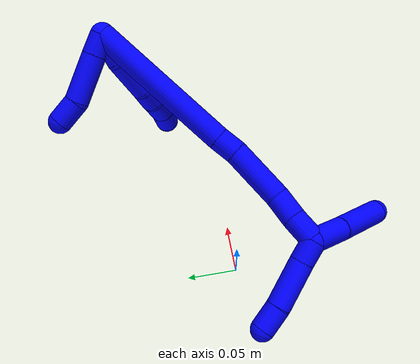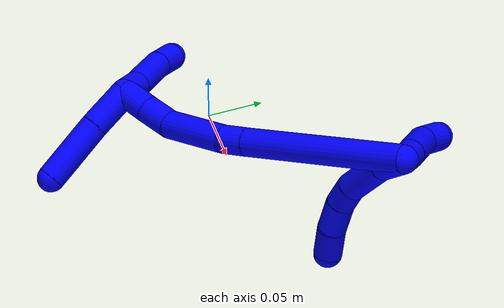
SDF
<sdf version="1.7">
 <world name="default">
  <model name="1">
   <static>0</static>
   <link name="1">
    <collision name="collision-cylinder-e_1_2_8">
     <pose>-0.000245 -0.013039 -0.009039 2.17699 -0.015438 -0.029486</pose>
     <geometry><cylinder><radius>0.0125</radius><length>0.031735</length></cylinder></geometry>
     <surface>
      <friction><ode><mu>1.16</mu><mu2>1.16</mu2><slip1>0</slip1><slip2>0</slip2></ode></friction>
      <contact><ode><kp>1e+06</kp><kd>1</kd><max_vel>0</max_vel><min_depth>0.001</min_depth></ode></contact>
     </surface>
    </collision>
    <visual name="visual-cylinder-e_1_2_8">
     <pose>-0.000245 -0.013039 -0.009039 2.17699 -0.015438 -0.029486</pose>
     <geometry><cylinder><radius>0.0125</radius><length>0.031735</length></cylinder></geometry>
     <material><ambient>0 0 1 1</ambient></material>
    </visual>
    <collision name="collision-cylinder-e_2_8_9">
     <pose>0.003306 -0.04509 -0.026472 1.98654 0.180654 0.276217</pose>
     <geometry><cylinder><radius>0.0125</radius><length>0.042253</length></cylinder></geometry>
     <surface>
      <friction><ode><mu>1.16</mu><mu2>1.16</mu2><slip1>0</slip1><slip2>0</slip2></ode></friction>
      <contact><ode><kp>1e+06</kp><kd>1</kd><max_vel>0</max_vel><min_depth>0.001</min_depth></ode></contact>
     </surface>
    </collision>
    <visual name="visual-cylinder-e_2_8_9">
     <pose>0.003306 -0.04509 -0.026472 1.98654 0.180654 0.276217</pose>
     <geometry><cylinder><radius>0.0125</radius><length>0.042253</length></cylinder></geometry>
     <material><ambient>0 0 1 1</ambient></material>
    </visual>
    <collision name="collision-cylinder-e_3_9_10">
     <pose>0.011807 -0.073025 -0.038588 1.96599 0.452942 0.665835</pose>
     <geometry><cylinder><radius>0.0125</radius><length>0.021506</length></cylinder></geometry>
     <surface>
      <friction><ode><mu>1.16</mu><mu2>1.16</mu2><slip1>0</slip1><slip2>0</slip2></ode></friction>
      <contact><ode><kp>1e+06</kp><kd>1</kd><max_vel>0</max_vel><min_depth>0.001</min_depth></ode></contact>
     </surface>
    </collision>
    <visual name="visual-cylinder-e_3_9_10">
     <pose>0.011807 -0.073025 -0.038588 1.96599 0.452942 0.665835</pose>
     <geometry><cylinder><radius>0.0125</radius><length>0.021506</length></cylinder></geometry>
     <material><ambient>0 0 1 1</ambient></material>
    </visual>
    <collision name="collision-cylinder-e_4_10_11">
     <pose>0.025335 -0.092169 -0.045385 1.86299 0.690728 0.901423</pose>
     <geometry><cylinder><radius>0.0125</radius><length>0.027694</length></cylinder></geometry>
     <surface>
      <friction><ode><mu>1.16</mu><mu2>1.16</mu2><slip1>0</slip1><slip2>0</slip2></ode></friction>
      <contact><ode><kp>1e+06</kp><kd>1</kd><max_vel>0</max_vel><min_depth>0.001</min_depth></ode></contact>
     </surface>
    </collision>
    <visual name="visual-cylinder-e_4_10_11">
     <pose>0.025335 -0.092169 -0.045385 1.86299 0.690728 0.901423</pose>
     <geometry><cylinder><radius>0.0125</radius><length>0.027694</length></cylinder></geometry>
     <material><ambient>0 0 1 1</ambient></material>
    </visual>
    <collision name="collision-cylinder-e_5_11_6">
     <pose>0.043695 -0.110824 -0.052655 2.03248 0.791615 1.18699</pose>
     <geometry><cylinder><radius>0.0125</radius><length>0.026813</length></cylinder></geometry>
     <surface>
      <friction><ode><mu>1.16</mu><mu2>1.16</mu2><slip1>0</slip1><slip2>0</slip2></ode></friction>
      <contact><ode><kp>1e+06</kp><kd>1</kd><max_vel>0</max_vel><min_depth>0.001</min_depth></ode></contact>
     </surface>
    </collision>
    <visual name="visual-cylinder-e_5_11_6">
     <pose>0.043695 -0.110824 -0.052655 2.03248 0.791615 1.18699</pose>
     <geometry><cylinder><radius>0.0125</radius><length>0.026813</length></cylinder></geometry>
     <material><ambient>0 0 1 1</ambient></material>
    </visual>
    <collision name="collision-cylinder-e_1_2_12">
     <pose>0.000828 -0.000186 -0.011252 3.12508 0.073416 2.69941</pose>
     <geometry><cylinder><radius>0.0125</radius><length>0.022568</length></cylinder></geometry>
     <surface>
      <friction><ode><mu>1.16</mu><mu2>1.16</mu2><slip1>0</slip1><slip2>0</slip2></ode></friction>
      <contact><ode><kp>1e+06</kp><kd>1</kd><max_vel>0</max_vel><min_depth>0.001</min_depth></ode></contact>
     </surface>
    </collision>
    <visual name="visual-cylinder-e_1_2_12">
     <pose>0.000828 -0.000186 -0.011252 3.12508 0.073416 2.69941</pose>
     <geometry><cylinder><radius>0.0125</radius><length>0.022568</length></cylinder></geometry>
     <material><ambient>0 0 1 1</ambient></material>
    </visual>
    <collision name="collision-cylinder-e_2_12_13">
     <pose>0.002607 -0.001126 -0.047807 3.11179 0.03757 1.80035</pose>
     <geometry><cylinder><radius>0.0125</radius><length>0.050663</length></cylinder></geometry>
     <surface>
      <friction><ode><mu>1.16</mu><mu2>1.16</mu2><slip1>0</slip1><slip2>0</slip2></ode></friction>
      <contact><ode><kp>1e+06</kp><kd>1</kd><max_vel>0</max_vel><min_depth>0.001</min_depth></ode></contact>
     </surface>
    </collision>
    <visual name="visual-cylinder-e_2_12_13">
     <pose>0.002607 -0.001126 -0.047807 3.11179 0.03757 1.80035</pose>
     <geometry><cylinder><radius>0.0125</radius><length>0.050663</length></cylinder></geometry>
     <material><ambient>0 0 1 1</ambient></material>
    </visual>
    <collision name="collision-cylinder-e_3_13_5">
     <pose>0.006606 0.001388 -0.085725 -2.88811 0.229703 -1.47147</pose>
     <geometry><cylinder><radius>0.0125</radius><length>0.026769</length></cylinder></geometry>
     <surface>
      <friction><ode><mu>1.16</mu><mu2>1.16</mu2><slip1>0</slip1><slip2>0</slip2></ode></friction>
      <contact><ode><kp>1e+06</kp><kd>1</kd><max_vel>0</max_vel><min_depth>0.001</min_depth></ode></contact>
     </surface>
    </collision>
    <visual name="visual-cylinder-e_3_13_5">
     <pose>0.006606 0.001388 -0.085725 -2.88811 0.229703 -1.47147</pose>
     <geometry><cylinder><radius>0.0125</radius><length>0.026769</length></cylinder></geometry>
     <material><ambient>0 0 1 1</ambient></material>
    </visual>
    <collision name="collision-cylinder-e_1_2_14">
     <pose>-0.032199 -0.066756 -0.026095 1.94343 -0.422215 -0.608248</pose>
     <geometry><cylinder><radius>0.0125</radius><length>0.157151</length></cylinder></geometry>
     <surface>
      <friction><ode><mu>1.16</mu><mu2>1.16</mu2><slip1>0</slip1><slip2>0</slip2></ode></friction>
      <contact><ode><kp>1e+06</kp><kd>1</kd><max_vel>0</max_vel><min_depth>0.001</min_depth></ode></contact>
     </surface>
    </collision>
    <visual name="visual-cylinder-e_1_2_14">
     <pose>-0.032199 -0.066756 -0.026095 1.94343 -0.422215 -0.608248</pose>
     <geometry><cylinder><radius>0.0125</radius><length>0.157151</length></cylinder></geometry>
     <material><ambient>0 0 1 1</ambient></material>
    </visual>
    <collision name="collision-cylinder-e_2_14_15">
     <pose>-0.069608 -0.143312 -0.05532 1.88002 -0.468834 -0.63206</pose>
     <geometry><cylinder><radius>0.0125</radius><length>0.023064</length></cylinder></geometry>
     <surface>
      <friction><ode><mu>1.16</mu><mu2>1.16</mu2><slip1>0</slip1><slip2>0</slip2></ode></friction>
      <contact><ode><kp>1e+06</kp><kd>1</kd><max_vel>0</max_vel><min_depth>0.001</min_depth></ode></contact>
     </surface>
    </collision>
    <visual name="visual-cylinder-e_2_14_15">
     <pose>-0.069608 -0.143312 -0.05532 1.88002 -0.468834 -0.63206</pose>
     <geometry><cylinder><radius>0.0125</radius><length>0.023064</length></cylinder></geometry>
     <material><ambient>0 0 1 1</ambient></material>
    </visual>
    <collision name="collision-cylinder-e_3_15_16">
     <pose>-0.089667 -0.176668 -0.071044 2.06174 -0.507355 -0.816557</pose>
     <geometry><cylinder><radius>0.0125</radius><length>0.061122</length></cylinder></geometry>
     <surface>
      <friction><ode><mu>1.16</mu><mu2>1.16</mu2><slip1>0</slip1><slip2>0</slip2></ode></friction>
      <contact><ode><kp>1e+06</kp><kd>1</kd><max_vel>0</max_vel><min_depth>0.001</min_depth></ode></contact>
     </surface>
    </collision>
    <visual name="visual-cylinder-e_3_15_16">
     <pose>-0.089667 -0.176668 -0.071044 2.06174 -0.507355 -0.816557</pose>
     <geometry><cylinder><radius>0.0125</radius><length>0.061122</length></cylinder></geometry>
     <material><ambient>0 0 1 1</ambient></material>
    </visual>
    <collision name="collision-cylinder-e_4_16_17">
     <pose>-0.1141 -0.208691 -0.090467 2.24964 -0.72223 -1.33716</pose>
     <geometry><cylinder><radius>0.0125</radius><length>0.028995</length></cylinder></geometry>
     <surface>
      <friction><ode><mu>1.16</mu><mu2>1.16</mu2><slip1>0</slip1><slip2>0</slip2></ode></friction>
      <contact><ode><kp>1e+06</kp><kd>1</kd><max_vel>0</max_vel><min_depth>0.001</min_depth></ode></contact>
     </surface>
    </collision>
    <visual name="visual-cylinder-e_4_16_17">
     <pose>-0.1141 -0.208691 -0.090467 2.24964 -0.72223 -1.33716</pose>
     <geometry><cylinder><radius>0.0125</radius><length>0.028995</length></cylinder></geometry>
     <material><ambient>0 0 1 1</ambient></material>
    </visual>
    <collision name="collision-cylinder-e_5_17_1">
     <pose>-0.134667 -0.225332 -0.103007 2.18045 -0.833704 -1.40825</pose>
     <geometry><cylinder><radius>0.0125</radius><length>0.029668</length></cylinder></geometry>
     <surface>
      <friction><ode><mu>1.16</mu><mu2>1.16</mu2><slip1>0</slip1><slip2>0</slip2></ode></friction>
      <contact><ode><kp>1e+06</kp><kd>1</kd><max_vel>0</max_vel><min_depth>0.001</min_depth></ode></contact>
     </surface>
    </collision>
    <visual name="visual-cylinder-e_5_17_1">
     <pose>-0.134667 -0.225332 -0.103007 2.18045 -0.833704 -1.40825</pose>
     <geometry><cylinder><radius>0.0125</radius><length>0.029668</length></cylinder></geometry>
     <material><ambient>0 0 1 1</ambient></material>
    </visual>
    <collision name="collision-cylinder-e_1_1_18">
     <pose>-0.145367 -0.231892 -0.120761 -3.00843 0.023319 -0.346235</pose>
     <geometry><cylinder><radius>0.0125</radius><length>0.024312</length></cylinder></geometry>
     <surface>
      <friction><ode><mu>1.16</mu><mu2>1.16</mu2><slip1>0</slip1><slip2>0</slip2></ode></friction>
      <contact><ode><kp>1e+06</kp><kd>1</kd><max_vel>0</max_vel><min_depth>0.001</min_depth></ode></contact>
     </surface>
    </collision>
    <visual name="visual-cylinder-e_1_1_18">
     <pose>-0.145367 -0.231892 -0.120761 -3.00843 0.023319 -0.346235</pose>
     <geometry><cylinder><radius>0.0125</radius><length>0.024312</length></cylinder></geometry>
     <material><ambient>0 0 1 1</ambient></material>
    </visual>
    <collision name="collision-cylinder-e_2_18_19">
     <pose>-0.146971 -0.226508 -0.157144 -2.98788 -0.076467 0.922064</pose>
     <geometry><cylinder><radius>0.0125</radius><length>0.049402</length></cylinder></geometry>
     <surface>
      <friction><ode><mu>1.16</mu><mu2>1.16</mu2><slip1>0</slip1><slip2>0</slip2></ode></friction>
      <contact><ode><kp>1e+06</kp><kd>1</kd><max_vel>0</max_vel><min_depth>0.001</min_depth></ode></contact>
     </surface>
    </collision>
    <visual name="visual-cylinder-e_2_18_19">
     <pose>-0.146971 -0.226508 -0.157144 -2.98788 -0.076467 0.922064</pose>
     <geometry><cylinder><radius>0.0125</radius><length>0.049402</length></cylinder></geometry>
     <material><ambient>0 0 1 1</ambient></material>
    </visual>
    <collision name="collision-cylinder-e_3_19_4">
     <pose>-0.14838 -0.219767 -0.194277 -2.91348 0.036373 -0.314924</pose>
     <geometry><cylinder><radius>0.0125</radius><length>0.026286</length></cylinder></geometry>
     <surface>
      <friction><ode><mu>1.16</mu><mu2>1.16</mu2><slip1>0</slip1><slip2>0</slip2></ode></friction>
      <contact><ode><kp>1e+06</kp><kd>1</kd><max_vel>0</max_vel><min_depth>0.001</min_depth></ode></contact>
     </surface>
    </collision>
    <visual name="visual-cylinder-e_3_19_4">
     <pose>-0.14838 -0.219767 -0.194277 -2.91348 0.036373 -0.314924</pose>
     <geometry><cylinder><radius>0.0125</radius><length>0.026286</length></cylinder></geometry>
     <material><ambient>0 0 1 1</ambient></material>
    </visual>
    <collision name="collision-cylinder-e_1_1_20">
     <pose>-0.139551 -0.249845 -0.099221 1.04437 0.312208 0.180647</pose>
     <geometry><cylinder><radius>0.0125</radius><length>0.039716</length></cylinder></geometry>
     <surface>
      <friction><ode><mu>1.16</mu><mu2>1.16</mu2><slip1>0</slip1><slip2>0</slip2></ode></friction>
      <contact><ode><kp>1e+06</kp><kd>1</kd><max_vel>0</max_vel><min_depth>0.001</min_depth></ode></contact>
     </surface>
    </collision>
    <visual name="visual-cylinder-e_1_1_20">
     <pose>-0.139551 -0.249845 -0.099221 1.04437 0.312208 0.180647</pose>
     <geometry><cylinder><radius>0.0125</radius><length>0.039716</length></cylinder></geometry>
     <material><ambient>0 0 1 1</ambient></material>
    </visual>
    <collision name="collision-cylinder-e_2_20_3">
     <pose>-0.122683 -0.290438 -0.075429 1.03816 0.365314 0.210292</pose>
     <geometry><cylinder><radius>0.0125</radius><length>0.060284</length></cylinder></geometry>
     <surface>
      <friction><ode><mu>1.16</mu><mu2>1.16</mu2><slip1>0</slip1><slip2>0</slip2></ode></friction>
      <contact><ode><kp>1e+06</kp><kd>1</kd><max_vel>0</max_vel><min_depth>0.001</min_depth></ode></contact>
     </surface>
    </collision>
    <visual name="visual-cylinder-e_2_20_3">
     <pose>-0.122683 -0.290438 -0.075429 1.03816 0.365314 0.210292</pose>
     <geometry><cylinder><radius>0.0125</radius><length>0.060284</length></cylinder></geometry>
     <material><ambient>0 0 1 1</ambient></material>
    </visual>
    <collision name="collision-sphere-3">
     <pose>-0.111915 -0.314691 -0.061133 0 -0 0</pose>
     <geometry><sphere><radius>0.0125</radius></sphere></geometry>
     <surface>
      <friction><ode><mu>1.16</mu><mu2>1.16</mu2><slip1>0</slip1><slip2>0</slip2></ode></friction>
      <contact><ode><kp>1e+06</kp><kd>1</kd><max_vel>0</max_vel><min_depth>0.001</min_depth></ode></contact>
     </surface>
    </collision>
    <visual name="visual-sphere-3">
     <pose>-0.111915 -0.314691 -0.061133 0 -0 0</pose>
     <geometry><sphere><radius>0.0125</radius></sphere></geometry>
     <material><ambient>0 0 1 1</ambient></material>
    </visual>
    <collision name="collision-sphere-20">
     <pose>-0.133452 -0.266185 -0.089725 0 -0 0</pose>
     <geometry><sphere><radius>0.0125</radius></sphere></geometry>
     <surface>
      <friction><ode><mu>1.16</mu><mu2>1.16</mu2><slip1>0</slip1><slip2>0</slip2></ode></friction>
      <contact><ode><kp>1e+06</kp><kd>1</kd><max_vel>0</max_vel><min_depth>0.001</min_depth></ode></contact>
     </surface>
    </collision>
    <visual name="visual-sphere-20">
     <pose>-0.133452 -0.266185 -0.089725 0 -0 0</pose>
     <geometry><sphere><radius>0.0125</radius></sphere></geometry>
     <material><ambient>0 0 1 1</ambient></material>
    </visual>
    <collision name="collision-sphere-4">
     <pose>-0.147902 -0.216797 -0.207071 0 -0 0</pose>
     <geometry><sphere><radius>0.0125</radius></sphere></geometry>
     <surface>
      <friction><ode><mu>1.16</mu><mu2>1.16</mu2><slip1>0</slip1><slip2>0</slip2></ode></friction>
      <contact><ode><kp>1e+06</kp><kd>1</kd><max_vel>0</max_vel><min_depth>0.001</min_depth></ode></contact>
     </surface>
    </collision>
    <visual name="visual-sphere-4">
     <pose>-0.147902 -0.216797 -0.207071 0 -0 0</pose>
     <geometry><sphere><radius>0.0125</radius></sphere></geometry>
     <material><ambient>0 0 1 1</ambient></material>
    </visual>
    <collision name="collision-sphere-6">
     <pose>0.053234 -0.119258 -0.056852 0 -0 0</pose>
     <geometry><sphere><radius>0.0125</radius></sphere></geometry>
     <surface>
      <friction><ode><mu>1.16</mu><mu2>1.16</mu2><slip1>0</slip1><slip2>0</slip2></ode></friction>
      <contact><ode><kp>1e+06</kp><kd>1</kd><max_vel>0</max_vel><min_depth>0.001</min_depth></ode></contact>
     </surface>
    </collision>
    <visual name="visual-sphere-6">
     <pose>0.053234 -0.119258 -0.056852 0 -0 0</pose>
     <geometry><sphere><radius>0.0125</radius></sphere></geometry>
     <material><ambient>0 0 1 1</ambient></material>
    </visual>
    <collision name="collision-sphere-11">
     <pose>0.034157 -0.10239 -0.048459 0 -0 0</pose>
     <geometry><sphere><radius>0.0125</radius></sphere></geometry>
     <surface>
      <friction><ode><mu>1.16</mu><mu2>1.16</mu2><slip1>0</slip1><slip2>0</slip2></ode></friction>
      <contact><ode><kp>1e+06</kp><kd>1</kd><max_vel>0</max_vel><min_depth>0.001</min_depth></ode></contact>
     </surface>
    </collision>
    <visual name="visual-sphere-11">
     <pose>0.034157 -0.10239 -0.048459 0 -0 0</pose>
     <geometry><sphere><radius>0.0125</radius></sphere></geometry>
     <material><ambient>0 0 1 1</ambient></material>
    </visual>
    <collision name="collision-sphere-10">
     <pose>0.016513 -0.081949 -0.04231 0 -0 0</pose>
     <geometry><sphere><radius>0.0125</radius></sphere></geometry>
     <surface>
      <friction><ode><mu>1.16</mu><mu2>1.16</mu2><slip1>0</slip1><slip2>0</slip2></ode></friction>
      <contact><ode><kp>1e+06</kp><kd>1</kd><max_vel>0</max_vel><min_depth>0.001</min_depth></ode></contact>
     </surface>
    </collision>
    <visual name="visual-sphere-10">
     <pose>0.016513 -0.081949 -0.04231 0 -0 0</pose>
     <geometry><sphere><radius>0.0125</radius></sphere></geometry>
     <material><ambient>0 0 1 1</ambient></material>
    </visual>
    <collision name="collision-sphere-9">
     <pose>0.007102 -0.064102 -0.034866 0 -0 0</pose>
     <geometry><sphere><radius>0.0125</radius></sphere></geometry>
     <surface>
      <friction><ode><mu>1.16</mu><mu2>1.16</mu2><slip1>0</slip1><slip2>0</slip2></ode></friction>
      <contact><ode><kp>1e+06</kp><kd>1</kd><max_vel>0</max_vel><min_depth>0.001</min_depth></ode></contact>
     </surface>
    </collision>
    <visual name="visual-sphere-9">
     <pose>0.007102 -0.064102 -0.034866 0 -0 0</pose>
     <geometry><sphere><radius>0.0125</radius></sphere></geometry>
     <material><ambient>0 0 1 1</ambient></material>
    </visual>
    <collision name="collision-sphere-2">
     <geometry><sphere><radius>0.0125</radius></sphere></geometry>
     <surface>
      <friction><ode><mu>1.16</mu><mu2>1.16</mu2><slip1>0</slip1><slip2>0</slip2></ode></friction>
      <contact><ode><kp>1e+06</kp><kd>1</kd><max_vel>0</max_vel><min_depth>0.001</min_depth></ode></contact>
     </surface>
    </collision>
    <visual name="visual-sphere-2">
     <geometry><sphere><radius>0.0125</radius></sphere></geometry>
     <material><ambient>0 0 1 1</ambient></material>
    </visual>
    <collision name="collision-sphere-19">
     <pose>-0.148858 -0.222737 -0.181482 0 -0 0</pose>
     <geometry><sphere><radius>0.0125</radius></sphere></geometry>
     <surface>
      <friction><ode><mu>1.16</mu><mu2>1.16</mu2><slip1>0</slip1><slip2>0</slip2></ode></friction>
      <contact><ode><kp>1e+06</kp><kd>1</kd><max_vel>0</max_vel><min_depth>0.001</min_depth></ode></contact>
     </surface>
    </collision>
    <visual name="visual-sphere-19">
     <pose>-0.148858 -0.222737 -0.181482 0 -0 0</pose>
     <geometry><sphere><radius>0.0125</radius></sphere></geometry>
     <material><ambient>0 0 1 1</ambient></material>
    </visual>
    <collision name="collision-sphere-8">
     <pose>-0.00049 -0.026077 -0.018079 0 -0 0</pose>
     <geometry><sphere><radius>0.0125</radius></sphere></geometry>
     <surface>
      <friction><ode><mu>1.16</mu><mu2>1.16</mu2><slip1>0</slip1><slip2>0</slip2></ode></friction>
      <contact><ode><kp>1e+06</kp><kd>1</kd><max_vel>0</max_vel><min_depth>0.001</min_depth></ode></contact>
     </surface>
    </collision>
    <visual name="visual-sphere-8">
     <pose>-0.00049 -0.026077 -0.018079 0 -0 0</pose>
     <geometry><sphere><radius>0.0125</radius></sphere></geometry>
     <material><ambient>0 0 1 1</ambient></material>
    </visual>
    <collision name="collision-sphere-12">
     <pose>0.001655 -0.000372 -0.022504 0 -0 0</pose>
     <geometry><sphere><radius>0.0125</radius></sphere></geometry>
     <surface>
      <friction><ode><mu>1.16</mu><mu2>1.16</mu2><slip1>0</slip1><slip2>0</slip2></ode></friction>
      <contact><ode><kp>1e+06</kp><kd>1</kd><max_vel>0</max_vel><min_depth>0.001</min_depth></ode></contact>
     </surface>
    </collision>
    <visual name="visual-sphere-12">
     <pose>0.001655 -0.000372 -0.022504 0 -0 0</pose>
     <geometry><sphere><radius>0.0125</radius></sphere></geometry>
     <material><ambient>0 0 1 1</ambient></material>
    </visual>
    <collision name="collision-sphere-13">
     <pose>0.003558 -0.00188 -0.073109 0 -0 0</pose>
     <geometry><sphere><radius>0.0125</radius></sphere></geometry>
     <surface>
      <friction><ode><mu>1.16</mu><mu2>1.16</mu2><slip1>0</slip1><slip2>0</slip2></ode></friction>
      <contact><ode><kp>1e+06</kp><kd>1</kd><max_vel>0</max_vel><min_depth>0.001</min_depth></ode></contact>
     </surface>
    </collision>
    <visual name="visual-sphere-13">
     <pose>0.003558 -0.00188 -0.073109 0 -0 0</pose>
     <geometry><sphere><radius>0.0125</radius></sphere></geometry>
     <material><ambient>0 0 1 1</ambient></material>
    </visual>
    <collision name="collision-sphere-5">
     <pose>0.009653 0.004657 -0.098342 0 -0 0</pose>
     <geometry><sphere><radius>0.0125</radius></sphere></geometry>
     <surface>
      <friction><ode><mu>1.16</mu><mu2>1.16</mu2><slip1>0</slip1><slip2>0</slip2></ode></friction>
      <contact><ode><kp>1e+06</kp><kd>1</kd><max_vel>0</max_vel><min_depth>0.001</min_depth></ode></contact>
     </surface>
    </collision>
    <visual name="visual-sphere-5">
     <pose>0.009653 0.004657 -0.098342 0 -0 0</pose>
     <geometry><sphere><radius>0.0125</radius></sphere></geometry>
     <material><ambient>0 0 1 1</ambient></material>
    </visual>
    <collision name="collision-sphere-14">
     <pose>-0.064398 -0.133513 -0.05219 0 -0 0</pose>
     <geometry><sphere><radius>0.0125</radius></sphere></geometry>
     <surface>
      <friction><ode><mu>1.16</mu><mu2>1.16</mu2><slip1>0</slip1><slip2>0</slip2></ode></friction>
      <contact><ode><kp>1e+06</kp><kd>1</kd><max_vel>0</max_vel><min_depth>0.001</min_depth></ode></contact>
     </surface>
    </collision>
    <visual name="visual-sphere-14">
     <pose>-0.064398 -0.133513 -0.05219 0 -0 0</pose>
     <geometry><sphere><radius>0.0125</radius></sphere></geometry>
     <material><ambient>0 0 1 1</ambient></material>
    </visual>
    <collision name="collision-sphere-15">
     <pose>-0.074819 -0.153112 -0.058451 0 -0 0</pose>
     <geometry><sphere><radius>0.0125</radius></sphere></geometry>
     <surface>
      <friction><ode><mu>1.16</mu><mu2>1.16</mu2><slip1>0</slip1><slip2>0</slip2></ode></friction>
      <contact><ode><kp>1e+06</kp><kd>1</kd><max_vel>0</max_vel><min_depth>0.001</min_depth></ode></contact>
     </surface>
    </collision>
    <visual name="visual-sphere-15">
     <pose>-0.074819 -0.153112 -0.058451 0 -0 0</pose>
     <geometry><sphere><radius>0.0125</radius></sphere></geometry>
     <material><ambient>0 0 1 1</ambient></material>
    </visual>
    <collision name="collision-sphere-16">
     <pose>-0.104516 -0.200224 -0.083637 0 -0 0</pose>
     <geometry><sphere><radius>0.0125</radius></sphere></geometry>
     <surface>
      <friction><ode><mu>1.16</mu><mu2>1.16</mu2><slip1>0</slip1><slip2>0</slip2></ode></friction>
      <contact><ode><kp>1e+06</kp><kd>1</kd><max_vel>0</max_vel><min_depth>0.001</min_depth></ode></contact>
     </surface>
    </collision>
    <visual name="visual-sphere-16">
     <pose>-0.104516 -0.200224 -0.083637 0 -0 0</pose>
     <geometry><sphere><radius>0.0125</radius></sphere></geometry>
     <material><ambient>0 0 1 1</ambient></material>
    </visual>
    <collision name="collision-sphere-17">
     <pose>-0.123684 -0.217157 -0.097298 0 -0 0</pose>
     <geometry><sphere><radius>0.0125</radius></sphere></geometry>
     <surface>
      <friction><ode><mu>1.16</mu><mu2>1.16</mu2><slip1>0</slip1><slip2>0</slip2></ode></friction>
      <contact><ode><kp>1e+06</kp><kd>1</kd><max_vel>0</max_vel><min_depth>0.001</min_depth></ode></contact>
     </surface>
    </collision>
    <visual name="visual-sphere-17">
     <pose>-0.123684 -0.217157 -0.097298 0 -0 0</pose>
     <geometry><sphere><radius>0.0125</radius></sphere></geometry>
     <material><ambient>0 0 1 1</ambient></material>
    </visual>
    <collision name="collision-sphere-1">
     <pose>-0.145651 -0.233506 -0.108716 0 -0 0</pose>
     <geometry><sphere><radius>0.0125</radius></sphere></geometry>
     <surface>
      <friction><ode><mu>1.16</mu><mu2>1.16</mu2><slip1>0</slip1><slip2>0</slip2></ode></friction>
      <contact><ode><kp>1e+06</kp><kd>1</kd><max_vel>0</max_vel><min_depth>0.001</min_depth></ode></contact>
     </surface>
    </collision>
    <visual name="visual-sphere-1">
     <pose>-0.145651 -0.233506 -0.108716 0 -0 0</pose>
     <geometry><sphere><radius>0.0125</radius></sphere></geometry>
     <material><ambient>0 0 1 1</ambient></material>
    </visual>
    <collision name="collision-sphere-18">
     <pose>-0.145084 -0.230279 -0.132806 0 -0 0</pose>
     <geometry><sphere><radius>0.0125</radius></sphere></geometry>
     <surface>
      <friction><ode><mu>1.16</mu><mu2>1.16</mu2><slip1>0</slip1><slip2>0</slip2></ode></friction>
      <contact><ode><kp>1e+06</kp><kd>1</kd><max_vel>0</max_vel><min_depth>0.001</min_depth></ode></contact>
     </surface>
    </collision>
    <visual name="visual-sphere-18">
     <pose>-0.145084 -0.230279 -0.132806 0 -0 0</pose>
     <geometry><sphere><radius>0.0125</radius></sphere></geometry>
     <material><ambient>0 0 1 1</ambient></material>
    </visual>
    <inertial>
     <pose>-0.059329 -0.129072 -0.066089 0 -0 0</pose>
     <mass>0.75</mass>
     <inertia>
      <ixx>0.000144</ixx>
      <ixy>0</ixy>
      <ixz>0</ixz>
      <iyy>-0.000212</iyy>
      <iyz>0</iyz>
      <izz>0.000447</izz>
     </inertia>
    </inertial>
   </link>
   <pose>0.217325 0.097738 0.140945 0.801224 0.714687 0.358367</pose>
  </model>
 </world>
</sdf>
